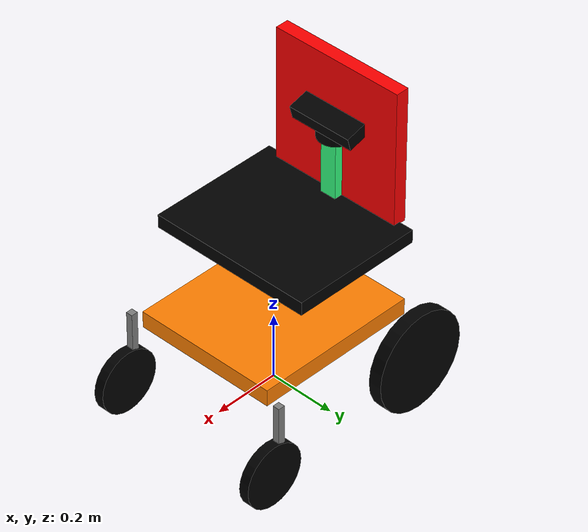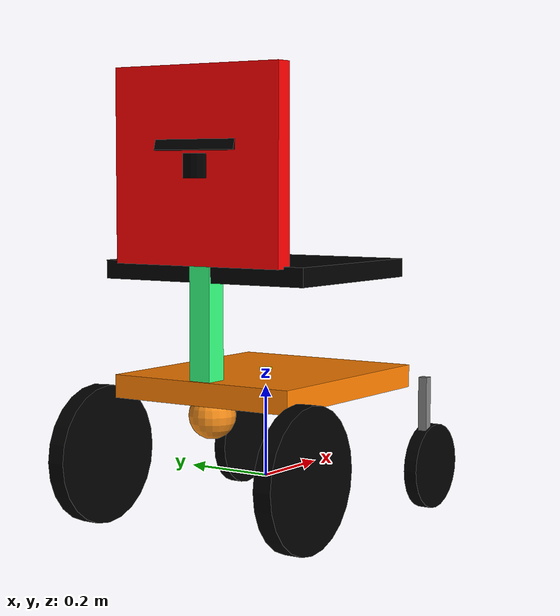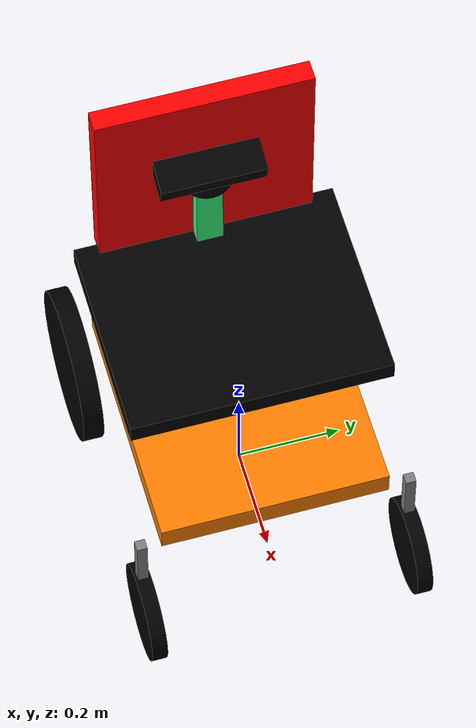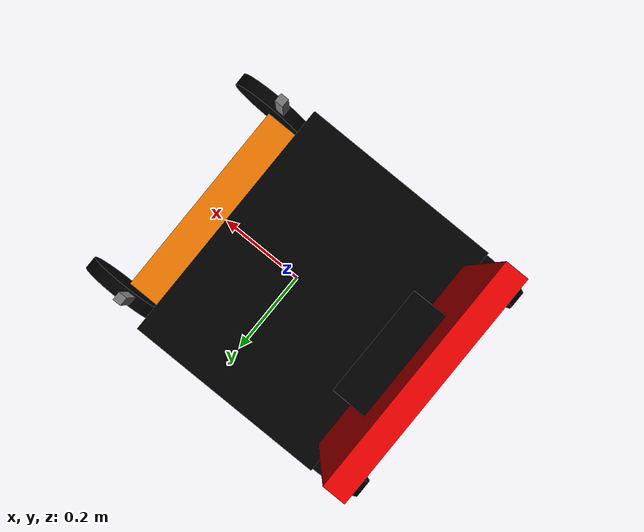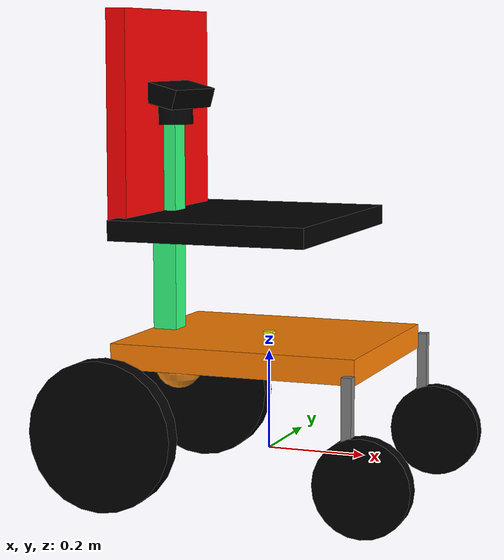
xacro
<?xml version="1.0"?>
<robot xmlns:xacro="http://www.ros.org/wiki/xacro" name="autonomous_wheelchair">

  <!-- Include Gazebo plugins -->
  <xacro:include filename="$(find wheelchair_description)/urdf/wheelchair.gazebo.xacro" />

  <!-- Include ros2_control description (DISABLED - using direct Gazebo plugin instead) -->
  <!-- Uncomment below to re-enable ros2_control if needed -->

  <!-- ==================== PARAMETERS ==================== -->
  <xacro:property name="base_length" value="0.50"/>
  <xacro:property name="base_width" value="0.44"/>
  <xacro:property name="base_height" value="0.05"/>
  <xacro:property name="base_mass" value="10.0"/>

  <!-- Computed box inertial for chassis -->
  <!-- For box: I = m/12 * (dim1² + dim2²) -->
  <!-- h² = 0.05² = 0.0025, w² = 0.44² = 0.1936, l² = 0.5² = 0.25 -->
  <!-- Ixx = (10/12) * (0.0025 + 0.1936) = 0.16341666666666668 -->
  <!-- Iyy = (10/12) * (0.25 + 0.0025) = 0.21041666666666667 -->
  <!-- Izz = (10/12) * (0.25 + 0.1936) = 0.3696666666666667 -->
  <xacro:property name="Ixx_val" value="0.16341666666666668"/>
  <xacro:property name="Iyy_val" value="0.21041666666666667"/>
  <xacro:property name="Izz_val" value="0.3696666666666667"/>

  <!-- ==================== WHEEL PARAMETERS ==================== -->
  <!-- Consistent naming: back/front refer to position, left/right refer to side -->
  <xacro:property name="wheel_radius_back" value="0.15"/>      <!-- Back wheel radius (m) -->
  <xacro:property name="wheel_width_back" value="0.04"/>        <!-- Back wheel width (m) -->
  <xacro:property name="wheel_radius_front" value="0.095"/>     <!-- Front wheel radius (m) -->
  <xacro:property name="wheel_width_front" value="0.03"/>      <!-- Front wheel width (m) -->
  <xacro:property name="wheel_mass" value="0.5"/>                <!-- Wheel mass (kg) -->
  <xacro:property name="wheel_front_mount_height" value="0.205"/>

  <!-- Wheel separation distances (relative to base_uplayer_link) -->
  <xacro:property name="wheel_separation_longitudinal" value="0.5"/>   <!-- Distance between front and back wheels (m) -->
  <xacro:property name="wheel_separation_lateral" value="0.52"/>      <!-- Distance between left and right wheels (m) -->
  <xacro:property name="wheel_base_x" value="0.25"/>                  <!-- Half of longitudinal separation (m) -->
  <xacro:property name="wheel_base_y" value="0.26"/>                  <!-- Half of lateral separation (m) -->

  <!-- For diff drive calculations: use lateral separation -->
  <xacro:property name="wheel_separation" value="0.52"/>              <!-- Lateral separation for diff drive (m) -->

  <!-- Base link height offset -->
  <xacro:property name="base_height_offset" value="0.21"/>

  <!-- ==================== BASE FRAME (chassis) ==================== -->
  <!-- Note: Original had no inertial, but Gazebo Fortress requires it -->
  <link name="chassis">
    <visual>
      <origin xyz="0.0 0.0 0.0" rpy="0.0 0.0 0.0"/>
      <geometry>
        <box size="0.001 0.001 0.001"/>
      </geometry>
      <material name="transparent">
        <color rgba="0.0 0.0 0.0 0.0"/>
      </material>
    </visual>
    <collision>
      <origin xyz="0.0 0.0 0.0" rpy="0.0 0.0 0.0"/>
      <geometry>
        <box size="0.001 0.001 0.001"/>
      </geometry>
    </collision>
    <inertial>
      <mass value="${base_mass}"/>
      <origin xyz="0.0 0.0 -0.05" rpy="0.0 0.0 0.0"/>  <!-- Lower CoM for better stability during turns -->
      <inertia
        ixx="${Ixx_val}" ixy="0.0" ixz="0.0"
        iyy="${Iyy_val}" iyz="0.0"
        izz="${Izz_val}"/>
    </inertial>
  </link>

  <!-- ==================== BASE UPPER LINK (main platform) ==================== -->
  <link name="base_uplayer_link">
    <visual name="chassis_visual">
      <origin xyz="0.0 0.0 0.0" rpy="0.0 0.0 0.0"/>
      <geometry>
        <box size="${base_length} ${base_width} ${base_height}"/>
      </geometry>
      <material name="orange">
        <color rgba="1.0 0.5 0.0 1.0"/>
      </material>
    </visual>

    <inertial>
      <mass value="${base_mass}"/>
      <origin xyz="0.0 0.0 0.0" rpy="0.0 0.0 0.0"/>
      <!-- Using computed box inertia values (same as chassis since same dimensions) -->
      <inertia
        ixx="${Ixx_val}" ixy="0" ixz="0"
        iyy="${Iyy_val}" iyz="0"
        izz="${Izz_val}"/>
    </inertial>

    <collision name="collision">
      <geometry>
        <box size="${base_length} ${base_width} ${base_height}"/>
      </geometry>
    </collision>

    <collision name="caster_collision">
      <origin xyz="-0.2 0.0 -0.05" rpy="0.0 0.0 0.0"/>
      <geometry>
        <sphere radius="0.05"/>
      </geometry>
      <surface>
        <friction>
          <ode>
            <mu>0</mu>
            <mu2>0</mu2>
            <slip1>1.0</slip1>
            <slip2>1.0</slip2>
          </ode>
        </friction>
      </surface>
    </collision>

    <visual name="caster_visual">
      <origin xyz="-0.2 0.0 -0.05" rpy="0.0 0.0 0.0"/>  <!-- Match collision position -->
      <geometry>
        <sphere radius="0.05"/>
      </geometry>
    </visual>
  </link>

  <joint name="base_joint" type="fixed">
    <origin xyz="0.0 0.0 ${base_height_offset}" rpy="0.0 0.0 0.0"/>
    <parent link="chassis"/>
    <child link="base_uplayer_link"/>
  </joint>

  <!-- ==================== WHEELS ==================== -->
  <!-- Wheel macro for back wheels -->
  <xacro:macro name="wheel_back" params="name x y">
    <link name="${name}_link">
      <inertial>
        <origin xyz="0.0 0.0 0.0" rpy="0.0 0.0 0.0"/>
        <mass value="${wheel_mass}"/>
        <!-- For cylinder: Ixx = Iyy = m/12 * (3*r² + h²), Izz = m*r²/2 -->
        <!-- Back wheel: r=0.15, h=0.04, m=0.5 -->
        <!-- Ixx = Iyy = 0.5/12 * (3*0.0225 + 0.0016) = 0.0029 -->
        <!-- Izz = 0.5 * 0.0225 / 2 = 0.0056 -->
        <inertia ixx="0.0029" ixy="0.0" ixz="0.0" iyy="0.0029" iyz="0.0" izz="0.0056"/>
      </inertial>
      <visual name="${name}_visual">
        <origin xyz="0.0 0.0 0.0" rpy="1.57079632679 0.0 0.0"/>  <!-- π/2 rotation for cylinder -->
        <geometry>
          <cylinder length="${wheel_width_back}" radius="${wheel_radius_back}"/>
        </geometry>
        <material name="black">
          <color rgba="0 0 0 1"/>
        </material>
      </visual>
      <collision name="${name}_collision">
        <origin xyz="0.0 0.0 0.0" rpy="1.57079632679 0.0 0.0"/>  <!-- π/2 rotation for cylinder -->
        <geometry>
          <cylinder length="${wheel_width_back}" radius="${wheel_radius_back}"/>
        </geometry>
        <surface>
          <friction>
            <ode>
              <mu>1.0</mu>     <!-- High friction for good grip (driving wheels) -->
              <mu2>1.0</mu2>   <!-- High friction for good grip (driving wheels) -->
              <slip1>0.0</slip1>  <!-- No slip for traction -->
              <slip2>0.0</slip2>  <!-- No slip for traction -->
            </ode>
          </friction>
          <contact>
            <ode>
              <kp>1000000.0</kp>
              <kd>100.0</kd>
            </ode>
          </contact>
        </surface>
      </collision>
    </link>

    <joint name="${name}_joint" type="continuous">
      <!-- Wheel center should be at negative wheel radius below base_uplayer_link center -->
      <!-- This positions the wheel so it touches the ground -->
      <origin xyz="${x} ${y} -${wheel_radius_back}" rpy="0.0 0.0 0.0"/>
      <parent link="base_uplayer_link"/>
      <child link="${name}_link"/>
      <axis xyz="0.0 1.0 0.0"/>
    </joint>
  </xacro:macro>

  <!-- Wheel macro for front wheels (modeled as casters: yaw joint + wheel roll joint) -->
  <xacro:macro name="wheel_front" params="name x y">
    <!-- Caster mount link (small metal fork under the base) -->
    <link name="${name}_caster_link">
      <inertial>
        <origin xyz="0.0 0.0 0.0" rpy="0.0 0.0 0.0"/>
        <mass value="0.5"/>  <!-- Increased mass for better caster engagement -->
        <inertia ixx="0.0005" ixy="0.0" ixz="0.0" iyy="0.0005" iyz="0.0" izz="0.0005"/>  <!-- Updated for increased mass -->
      </inertial>
      <visual name="${name}_caster_visual">
        <!-- Simple vertical bar representing the metal support -->
        <origin xyz="0.0 0.0 -${wheel_front_mount_height * 0.5}" rpy="0.0 0.0 0.0"/>
        <geometry>
          <box size="0.02 0.02 ${wheel_front_mount_height}"/>
        </geometry>
        <material name="gray">
          <color rgba="0.5 0.5 0.5 1.0"/>
        </material>
      </visual>
      <collision name="${name}_caster_collision">
        <origin xyz="0.0 0.0 -${wheel_front_mount_height * 0.5}" rpy="0.0 0.0 0.0"/>
        <geometry>
          <box size="0.02 0.02 ${wheel_front_mount_height}"/>
        </geometry>
      </collision>
    </link>

    <!-- Wheel link (same as before, attached to caster link instead of base) -->
    <link name="${name}_link">
      <inertial>
        <origin xyz="0.0 0.0 0.0" rpy="0.0 0.0 0.0"/>
        <mass value="${wheel_mass}"/>
        <!-- For cylinder: Ixx = Iyy = m/12 * (3*r² + h²), Izz = m*r²/2 -->
        <!-- Front wheel: r=0.095, h=0.03, m=0.5 -->
        <!-- Ixx = Iyy = 0.5/12 * (3*0.009025 + 0.0009) = 0.0012 -->
        <!-- Izz = 0.5 * 0.009025 / 2 = 0.0023 -->
        <inertia ixx="0.0012" ixy="0.0" ixz="0.0" iyy="0.0012" iyz="0.0" izz="0.0023"/>
      </inertial>
      <visual name="${name}_visual">
        <origin xyz="0.0 0.0 0.0" rpy="1.57079632679 0.0 0.0"/>  <!-- π/2 rotation for cylinder -->
        <geometry>
          <cylinder length="${wheel_width_front}" radius="${wheel_radius_front}"/>
        </geometry>
        <material name="black">
          <color rgba="0 0 0 1"/>
        </material>
      </visual>
      <collision name="${name}_collision">
        <origin xyz="0.0 0.0 0.0" rpy="1.57079632679 0.0 0.0"/>  <!-- π/2 rotation for cylinder -->
        <geometry>
          <cylinder length="${wheel_width_front}" radius="${wheel_radius_front}"/>
        </geometry>
        <surface>
          <friction>
            <ode>
              <mu>0.001</mu>        <!-- Very low friction for easy lateral sliding -->
              <mu2>0.001</mu2>      <!-- Very low friction for easy lateral sliding -->
              <slip1>1.0</slip1>    <!-- Maximum slip for better turning -->
              <slip2>1.0</slip2>    <!-- Maximum slip for better turning -->
            </ode>
          </friction>
          <contact>
            <ode>
              <kp>1000000.0</kp>
              <kd>100.0</kd>
              <min_depth>0.001</min_depth>  <!-- Minimum contact depth -->
            </ode>
          </contact>
        </surface>
      </collision>
    </link>

    <!-- Caster yaw joint: base -> caster link (rotation about Z) -->
    <joint name="${name}_caster_yaw_joint" type="continuous">
      <origin xyz="${x} ${y} 0.0" rpy="0.0 0.0 0.0"/>
      <parent link="base_uplayer_link"/>
      <child link="${name}_caster_link"/>
      <axis xyz="0.0 0.0 1.0"/>
      <dynamics damping="0.001" friction="0.0"/>  <!-- Very low damping for free caster rotation -->
      <limit effort="10.0" velocity="10.0"/>
    </joint>

    <!-- Wheel roll joint: caster link -> wheel (rotation about Y) -->
    <joint name="${name}_joint" type="continuous">
      <!-- Place the wheel center below the caster mount by wheel_front_mount_height -->
      <!-- Add 3cm forward offset to help caster trail naturally (improves turning) -->
      <origin xyz="0.03 0.0 -${wheel_front_mount_height}" rpy="0.0 0.0 0.0"/>
      <parent link="${name}_caster_link"/>
      <child link="${name}_link"/>
      <axis xyz="0.0 1.0 0.0"/>
      <dynamics damping="0.001" friction="0.0"/>  <!-- Very low damping for free wheel rotation -->
      <limit effort="50.0" velocity="50.0"/>
    </joint>
  </xacro:macro>

  <!-- ==================== WHEEL INSTANTIATION ==================== -->
  <xacro:wheel_back name="wheel1" x="-${wheel_base_x}" y="-${wheel_base_y}"/>  <!-- Back Right -->
  <xacro:wheel_back name="wheel2" x="-${wheel_base_x}" y="${wheel_base_y}"/>     <!-- Back Left -->
  <xacro:wheel_front name="wheel3" x="${wheel_base_x}" y="-${wheel_base_y}"/>    <!-- Front Right -->
  <xacro:wheel_front name="wheel4" x="${wheel_base_x}" y="${wheel_base_y}"/>    <!-- Front Left -->

  <!-- ==================== IMU SENSOR ==================== -->
  <link name="imu_sensor_link">
    <collision>
      <origin xyz="0.0 0.0 0.0" rpy="0.0 0.0 0.0"/>
      <geometry>
        <box size="0.02 0.02 0.02"/>
      </geometry>
    </collision>
    <visual>
      <origin xyz="0.0 0.0 0.0" rpy="0.0 0.0 0.0"/>
      <geometry>
        <box size="0.02 0.02 0.02"/>
      </geometry>
      <material name="yellow">
        <color rgba="1 1 0 1"/>
      </material>
    </visual>
    <inertial>
      <mass value="0.001"/>
      <origin xyz="0.0 0.0 0.0" rpy="0.0 0.0 0.0"/>
      <inertia ixx="0.00000015" ixy="0.0" ixz="0.0" iyy="0.00000015" iyz="0.0" izz="0.00000015"/>
    </inertial>
  </link>

  <joint name="imu_sensor_joint" type="fixed">
    <origin xyz="0.0 0.0 0.23" rpy="0.0 0.0 0.0"/>
    <parent link="chassis"/>
    <child link="imu_sensor_link"/>
  </joint>

  <!-- ==================== CAMERA STAND & CAMERA ==================== -->
  <link name="camera_stand_link">
    <inertial>
      <origin xyz="0.0 0.0 0.0" rpy="0.0 0.0 0.0"/>
      <mass value="1.0"/>
      <inertia ixx="0.01" ixy="0.0" ixz="0.0" iyy="0.01" iyz="0.0" izz="0.01"/>
    </inertial>
    <visual>
      <origin xyz="0.0 0.0 0.0" rpy="0.0 0.0 0.0"/>
      <geometry>
        <box size="0.05 0.05 0.435"/>
      </geometry>
      <material name="gray">
        <color rgba="0.2 1.0 0.5 1.0"/>
      </material>
    </visual>
    <collision>
      <origin xyz="0.0 0.0 0.0" rpy="0.0 0.0 0.0"/>
      <geometry>
        <box size="0.05 0.04 0.435"/>
      </geometry>
    </collision>
  </link>

  <joint name="camera_stand_joint" type="fixed">
    <!-- Position: base top is at z=0.235m (0.21 + 0.025), stand center should be at base top + half stand height -->
    <!-- Stand height = 0.435m, so center = 0.235 + 0.2175 = 0.4525m -->
    <origin xyz="-0.22 0.0 0.4525" rpy="0.0 0.0 0.0"/>
    <parent link="chassis"/>
    <child link="camera_stand_link"/>
  </joint>

  <!-- Camera Link -->
  <link name="camera_link">
    <inertial>
      <origin xyz="0.0 0.0 0.0" rpy="0.0 0.0 0.0"/>
      <mass value="1.0"/>
      <inertia ixx="0.01" ixy="0.0" ixz="0.0" iyy="0.01" iyz="0.0" izz="0.01"/>
    </inertial>
      <visual name="camera_visual">
      <origin xyz="0.0 0.0 0.03" rpy="0.0 0.0 0.0"/>
      <geometry>
        <box size="0.1 0.2 0.04"/>
      </geometry>
      <material name="camera_material">
        <color rgba="0.0 0.0 0.0 1.0"/>
      </material>
    </visual>
    <collision>
      <origin xyz="0.0 0.0 0.03" rpy="0.0 0.0 0.0"/>
      <geometry>
        <box size="0.1 0.2 0.04"/>
      </geometry>
    </collision>
  </link>

  <joint name="camera_joint" type="fixed">
    <parent link="camera_stand_link"/>
    <child link="camera_link"/>
    <!-- Camera at top of stand: stand center is at z=0.4525, stand extends to z=0.4525+0.2175=0.67 -->
    <!-- Camera should be at top of stand, so position at stand top + half camera height -->
    <!-- Camera height = 0.04m, so center = 0.67 + 0.02 = 0.69m from stand center -->
    <!-- But wait, stand center is at 0.4525, stand top is at 0.4525+0.2175=0.67 -->
    <!-- Camera center should be at stand top + half camera height = 0.67 + 0.02 = 0.69 -->
    <!-- Relative to stand center: 0.69 - 0.4525 = 0.2375 -->
    <origin xyz="0.0 0.0 0.2375" rpy="0.0 0.2618 0.0"/>
  </joint>

  <!-- Kinect Optical Frame -->
  <joint name="kinect_optical_joint" type="fixed">
    <origin xyz="0.0 0.0 0.0" rpy="-1.57079632679 0.0 -1.57079632679"/>
    <parent link="camera_link"/>
    <child link="kinect_optical"/>
  </joint>

  <link name="kinect_optical">
    <!-- Kinect optical frame - minimal link for TF tree (no visual/collision needed) -->
    <inertial>
      <mass value="0.0001"/>
      <origin xyz="0.0 0.0 0.0" rpy="0.0 0.0 0.0"/>
      <inertia
        ixx="0.00000001" ixy="0.0" ixz="0.0"
        iyy="0.00000001" iyz="0.0"
        izz="0.00000001"/>
    </inertial>
  </link>

  <!-- ==================== LIDAR SENSOR ==================== -->
  <link name="base_laser">
    <visual>
      <origin xyz="0.0 0.0 0.0" rpy="0.0 0.0 0.0"/>  <!-- Aligned with collision -->
      <geometry>
        <cylinder length="0.05" radius="0.05"/>
      </geometry>
      <material name="black">
        <color rgba="0 0 0 1"/>
      </material>
    </visual>
    <collision>
      <origin xyz="0.0 0.0 0.0" rpy="0.0 0.0 0.0"/>
      <geometry>
        <box size="0.2 0.1 0.04"/>
      </geometry>
    </collision>
    <inertial>
      <mass value="0.1"/>
      <origin xyz="0.0 0.0 0.0" rpy="0.0 0.0 0.0"/>
      <inertia ixx="1e-6" ixy="0.0" ixz="0.0" iyy="1e-6" iyz="0.0" izz="1e-6"/>
    </inertial>
  </link>

  <joint name="base_link_to_lidar" type="fixed">
    <parent link="back_link"/>
    <child link="base_laser"/>
    <!-- Position: Lidar mounted on back bar at lower height -->
    <!-- Back bar is a box: 0.04 x 0.41 x 0.41 (width x height x depth) -->
    <!-- Back bar center is at z=0, extends from z=-0.205 to z=+0.205 -->
    <!-- Place lidar at lower position: z = 0.0 (center height) for better obstacle detection -->
    <!-- Position slightly forward (x positive) to clear the back bar surface -->
    <origin xyz="0.02 0.0 0.0" rpy="0.0 0.0 0.0"/>
  </joint>

  <!-- ==================== STRUCTURAL COMPONENTS (simplified) ==================== -->
  <!-- Note: Keeping essential structure, can add more details later if needed -->
  <!-- Seat link -->
  <link name="seat_link">
    <inertial>
      <origin xyz="0.0 0.0 0.0" rpy="0.0 0.0 0.0"/>
      <mass value="1.0"/>
      <inertia ixx="0.01" ixy="0.0" ixz="0.0" iyy="0.01" iyz="0.0" izz="0.01"/>
    </inertial>
    <visual>
      <origin xyz="0.0 0.0 0.0" rpy="0.0 0.0 0.0"/>
      <geometry>
        <box size="0.4 0.5 0.04"/>
      </geometry>
      <material name="black">
        <color rgba="0.0 0.0 0.0 1.0"/>
      </material>
    </visual>
    <collision>
      <origin xyz="0.0 0.0 0.0" rpy="0.0 0.0 0.0"/>
      <geometry>
        <box size="0.4 0.5 0.04"/>
      </geometry>
    </collision>
  </link>

  <joint name="seat_joint" type="fixed">
    <origin xyz="-0.04 0.0 0.25" rpy="0.0 0.0 0.0"/>
    <parent link="base_uplayer_link"/>
    <child link="seat_link"/>
  </joint>

  <!-- Back link -->
  <link name="back_link">
    <inertial>
      <origin xyz="0.0 0.0 0.0" rpy="0.0 0.0 0.0"/>
      <mass value="1.0"/>
      <inertia ixx="0.01" ixy="0.0" ixz="0.0" iyy="0.01" iyz="0.0" izz="0.01"/>
    </inertial>
    <visual>
      <origin xyz="0.0 0.0 0.0" rpy="0.0 0.0 0.0"/>
      <geometry>
        <box size="0.04 0.41 0.41"/>
      </geometry>
      <material name="red">
        <color rgba="1.0 0.0 0.0 1.0"/>
      </material>
    </visual>
    <collision>
      <origin xyz="0.0 0.0 0.0" rpy="0.0 0.0 0.0"/>
      <geometry>
        <box size="0.02 0.41 0.41"/>
      </geometry>
    </collision>
  </link>

  <joint name="back_joint" type="fixed">
    <origin xyz="-0.2 0.0 0.22" rpy="0.0 0.0 0.0"/>
    <parent link="seat_link"/>
    <child link="back_link"/>
  </joint>

</robot>
